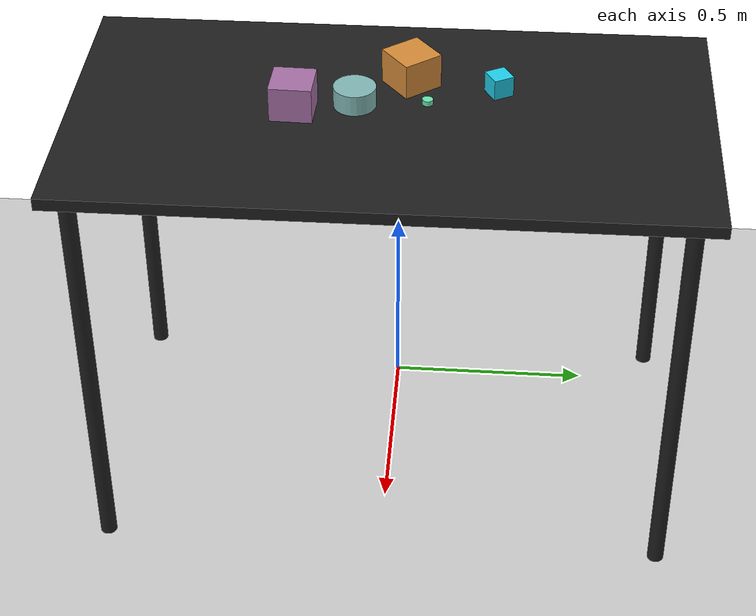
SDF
<?xml version="1.0" ?>
<sdf version="1.6">
  <world name="arm_world">
    <plugin filename="gz-sim-physics-system" name="gz::sim::systems::Physics">
      <engine>
        <filename>libgz-physics-bullet-featherstone-plugin.so</filename>
      </engine>
    </plugin>
    <plugin filename="gz-sim-user-commands-system" name="gz::sim::systems::UserCommands"/>
    <plugin filename="gz-sim-scene-broadcaster-system" name="gz::sim::systems::SceneBroadcaster"/>
    <plugin filename="gz-sim-sensors-system" name="gz::sim::systems::Sensors">
      <render_engine>ogre2</render_engine>
    </plugin>
    <gravity>0.0 0.0 -9.8</gravity>
    <scene>
      <shadows>false</shadows>
    </scene>
    <gui>
      <camera name="user_camera">
        <pose>0.75 -0.75 1.4 0 0.29 2.21</pose>
      </camera>
    </gui>
    <include>
      <uri>https://fuel.gazebosim.org/1.0/OpenRobotics/models/Sun</uri>
    </include>
    <model name="table">
      <static>true</static>
      <include>
        <uri>model://table</uri>
      </include>
      <pose>0.29 0 0 0 0 1.5708</pose>
    </model>
    <model name="ground_plane">
      <static>true</static>
      <link name="link">
        <collision name="collision">
          <geometry>
            <plane>
              <normal>0 0 1</normal>
            </plane>
          </geometry>
          <surface>
            <friction>
              <ode>
                <mu>1.0</mu>
                <mu2>1.0</mu2>
              </ode>
            </friction>
          </surface>
        </collision>
        <visual name="visual">
          <geometry>
            <plane>
              <normal>0 0 1</normal>
              <size>100 100</size>
            </plane>
          </geometry>
          <material>
            <ambient>0.8 0.8 0.8 1</ambient>
            <diffuse>0.8 0.8 0.8 1</diffuse>
            <specular>0.8 0.8 0.8 1</specular>
          </material>
        </visual>
      </link>
    </model>
    <model name="cylinder_s_0">
      <pose>0.289 0.085 1.05 0 0 0.87</pose>
      <link name="cylinder_s_0_link">
        <collision name="cylinder_s_0_collision">
          <geometry>
            <cylinder>
              <radius>0.0125</radius>
              <length>0.0125</length>
            </cylinder>
          </geometry>
        </collision>
        <visual name="cylinder_s_0_visual">
          <geometry>
            <cylinder>
              <radius>0.0125</radius>
              <length>0.0125</length>
            </cylinder>
          </geometry>
          <material>
            <ambient>0.42 0.9 0.68 1</ambient>
            <diffuse>0.42 0.9 0.68 1</diffuse>
          </material>
        </visual>
        <velocity_decay>
          <linear>1</linear>
          <angular>1</angular>
        </velocity_decay>
      </link>
    </model>
    <model name="cube_l_1">
      <pose>0.156 0.04 1.05 0 0 2.24</pose>
      <link name="cube_l_1_link">
        <collision name="cube_l_1_collision">
          <geometry>
            <box>
              <size>0.1 0.1 0.1</size>
            </box>
          </geometry>
        </collision>
        <visual name="cube_l_1_visual">
          <geometry>
            <box>
              <size>0.1 0.1 0.1</size>
            </box>
          </geometry>
          <material>
            <ambient>0.84 0.55 0.22 1</ambient>
            <diffuse>0.84 0.55 0.22 1</diffuse>
          </material>
        </visual>
        <velocity_decay>
          <linear>1</linear>
          <angular>1</angular>
        </velocity_decay>
      </link>
    </model>
    <model name="cube_l_2">
      <pose>0.295 -0.225 1.05 0 0 6.25</pose>
      <link name="cube_l_2_link">
        <collision name="cube_l_2_collision">
          <geometry>
            <box>
              <size>0.1 0.1 0.1</size>
            </box>
          </geometry>
        </collision>
        <visual name="cube_l_2_visual">
          <geometry>
            <box>
              <size>0.1 0.1 0.1</size>
            </box>
          </geometry>
          <material>
            <ambient>0.65 0.44 0.65 1</ambient>
            <diffuse>0.65 0.44 0.65 1</diffuse>
          </material>
        </visual>
        <velocity_decay>
          <linear>1</linear>
          <angular>1</angular>
        </velocity_decay>
      </link>
    </model>
    <model name="cube_m_3">
      <pose>0.2 0.247 1.05 0 0 3.64</pose>
      <link name="cube_m_3_link">
        <collision name="cube_m_3_collision">
          <geometry>
            <box>
              <size>0.05 0.05 0.05</size>
            </box>
          </geometry>
        </collision>
        <visual name="cube_m_3_visual">
          <geometry>
            <box>
              <size>0.05 0.05 0.05</size>
            </box>
          </geometry>
          <material>
            <ambient>0.13 0.82 0.93 1</ambient>
            <diffuse>0.13 0.82 0.93 1</diffuse>
          </material>
        </visual>
        <velocity_decay>
          <linear>1</linear>
          <angular>1</angular>
        </velocity_decay>
      </link>
    </model>
    <model name="cylinder_l_4">
      <pose>0.275 -0.084 1.05 0 0 4.62</pose>
      <link name="cylinder_l_4_link">
        <collision name="cylinder_l_4_collision">
          <geometry>
            <cylinder>
              <radius>0.05</radius>
              <length>0.05</length>
            </cylinder>
          </geometry>
        </collision>
        <visual name="cylinder_l_4_visual">
          <geometry>
            <cylinder>
              <radius>0.05</radius>
              <length>0.05</length>
            </cylinder>
          </geometry>
          <material>
            <ambient>0.51 0.72 0.71 1</ambient>
            <diffuse>0.51 0.72 0.71 1</diffuse>
          </material>
        </visual>
        <velocity_decay>
          <linear>1</linear>
          <angular>1</angular>
        </velocity_decay>
      </link>
    </model>
  </world>
</sdf>

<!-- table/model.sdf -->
<sdf version="1.5">
  <model name="table">
    <static>true</static>
    <link name="link">
      <collision name="surface">
        <pose>0 0 1.0 0 0 0</pose>
        <geometry>
          <box>
            <size>1.5 0.8 0.03</size>
          </box>
        </geometry>
        <surface>
          <friction>
            <ode>
              <mu>0.6</mu>
              <mu2>0.6</mu2>
            </ode>
          </friction>
        </surface>
      </collision>
      <visual name="surface">
        <pose>0 0 1.0 0 0 0</pose>
        <geometry>
          <box>
            <size>1.5 0.8 0.03</size>
          </box>
        </geometry>
        <material>
          <script>
            <uri>file://media/materials/scripts/gazebo.material</uri>
            <name>Gazebo/Black</name>
          </script>
        </material>
      </visual>
      <collision name="front_left_leg">
        <pose>0.68 0.38 0.5 0 0 0</pose>
        <geometry>
          <cylinder>
            <radius>0.02</radius>
            <length>1.0</length>
          </cylinder>
        </geometry>
      </collision>
      <visual name="front_left_leg">
        <pose>0.68 0.38 0.5 0 0 0</pose>
        <geometry>
          <cylinder>
            <radius>0.02</radius>
            <length>1.0</length>
          </cylinder>
        </geometry>
        <material>
          <script>
            <uri>file://media/materials/scripts/gazebo.material</uri>
            <name>Gazebo/Black</name>
          </script>
        </material>
      </visual>
      <collision name="front_right_leg">
        <pose>0.68 -0.38 0.5 0 0 0</pose>
        <geometry>
          <cylinder>
            <radius>0.02</radius>
            <length>1.0</length>
          </cylinder>
        </geometry>
      </collision>
      <visual name="front_right_leg">
        <pose>0.68 -0.38 0.5 0 0 0</pose>
        <geometry>
          <cylinder>
            <radius>0.02</radius>
            <length>1.0</length>
          </cylinder>
        </geometry>
        <material>
          <script>
            <uri>file://media/materials/scripts/gazebo.material</uri>
            <name>Gazebo/Black</name>
          </script>
        </material>
      </visual>
      <collision name="back_right_leg">
        <pose>-0.68 -0.38 0.5 0 0 0</pose>
        <geometry>
          <cylinder>
            <radius>0.02</radius>
            <length>1.0</length>
          </cylinder>
        </geometry>
      </collision>
      <visual name="back_right_leg">
        <pose>-0.68 -0.38 0.5 0 0 0</pose>
        <geometry>
          <cylinder>
            <radius>0.02</radius>
            <length>1.0</length>
          </cylinder>
        </geometry>
        <material>
          <script>
            <uri>file://media/materials/scripts/gazebo.material</uri>
            <name>Gazebo/Black</name>
          </script>
        </material>
      </visual>
      <collision name="back_left_leg">
        <pose>-0.68 0.38 0.5 0 0 0</pose>
        <geometry>
          <cylinder>
            <radius>0.02</radius>
            <length>1.0</length>
          </cylinder>
        </geometry>
      </collision>
      <visual name="back_left_leg">
        <pose>-0.68 0.38 0.5 0 0 0</pose>
        <geometry>
          <cylinder>
            <radius>0.02</radius>
            <length>1.0</length>
          </cylinder>
        </geometry>
        <material>
          <script>
            <uri>file://media/materials/scripts/gazebo.material</uri>
            <name>Gazebo/Black</name>
          </script>
        </material>
      </visual>
    </link>
  </model>
</sdf>
